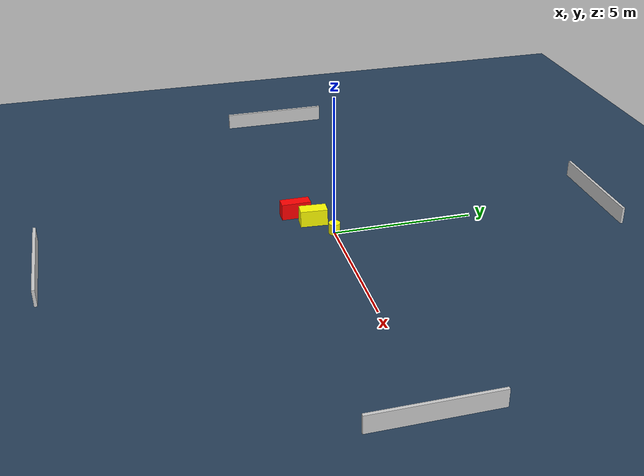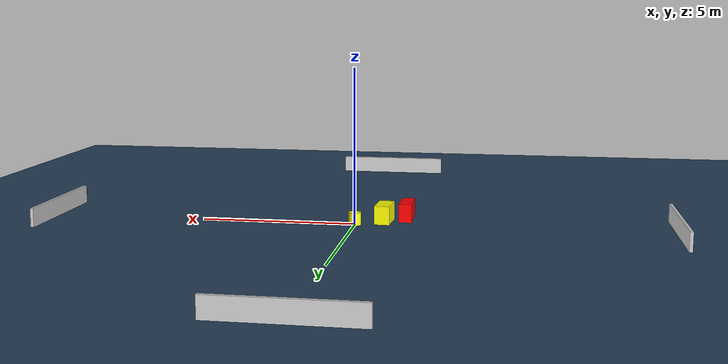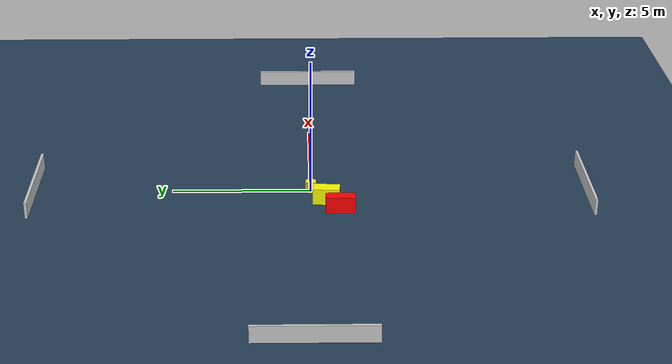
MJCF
<?xml version="1.0" ?>
<mujoco model="generated_environment">
  <option timestep="0.01" integrator="RK4" cone="elliptic"/>
  <default>
    <geom density="1"/>
  </default>
  <asset>
    <texture builtin="gradient" height="3072" name="skybox" rgb1="0.3 0.5 0.7" rgb2="0 0 0" type="skybox" width="512"/>
    <texture builtin="checker" height="300" name="groundplane" rgb1="0.2 0.3 0.4" rgb2="0.1 0.2 0.3" type="2d" width="300"/>
    <material name="groundplane" reflectance="0.2" texrepeat="5 5" texture="groundplane"/>
  </asset>
  <worldbody>
    <light dir="0 0 -1" directional="true" pos="0 0 1.5"/>
    <geom condim="3" friction="0.5 0.005 0.001" material="groundplane" name="floor" pos="0 0 0" size="0 0 0.05" type="plane"/>
    <body name="walls">
      <geom name="wall_1" condim="4" pos="-10.0 0.0 0.3" rgba="0.800000011920929 0.800000011920929 0.800000011920929 1.0" size="0.05 2.0 0.3" type="box"/>
      <geom name="wall_2" condim="4" pos="10.0 0.0 0.3" rgba="0.800000011920929 0.800000011920929 0.800000011920929 1.0" size="0.05 2.0 0.3" type="box"/>
      <geom name="wall_3" condim="4" pos="0.0 -10.0 0.3" rgba="0.800000011920929 0.800000011920929 0.800000011920929 1.0" size="2.0 0.05 0.3" type="box"/>
      <geom name="wall_4" condim="4" pos="0.0 10.0 0.3" rgba="0.800000011920929 0.800000011920929 0.800000011920929 1.0" size="2.0 0.05 0.3" type="box"/>
    </body>
    <body name="robot">
      <joint name="joint_x" type="slide" pos="0 0 0" axis="1 0 0"/>
      <joint name="joint_y" type="slide" pos="0 0 0" axis="0 1 0"/>
      <geom name="robot" type="cylinder" pos="0.0 0.0 0.2" size="0.2 0.2 0.0" mass="5.0" friction="1.0 0.005 0.0001" condim="4" rgba="1.0 1.0 0.0 1.0"/>
    </body>
    <body name="obstacle_1_movable">
      <geom name="obstacle_1_movable" condim="4" pos="-0.8794512929622375 -0.5413542842746075 0.3" euler="0 0 265.93064968139436" friction="0.0 0.005 0.001" rgba="1.0 1.0 0.0 1.0" size="0.4807586996989019 0.24138267414468 0.3" type="box" mass="0.1"/>
      <joint type="free"/>
    </body>
    <body name="obstacle_2_static">
      <geom name="obstacle_2_static" condim="4" pos="-1.5537348953925079 -1.0335504981467665 0.3" euler="0 0 270.19733215959764" friction="0.0 0.005 0.001" rgba="1.0 0.0 0.0 1.0" size="0.5276095350886019 0.20984673702631695 0.3" type="box"/>
    </body>
  </worldbody>
  <actuator>
    <motor name="actuator_x" joint="joint_x" gear="1" ctrlrange="-1 1"/>
    <motor name="actuator_y" joint="joint_y" gear="1" ctrlrange="-1 1"/>
  </actuator>
</mujoco>
